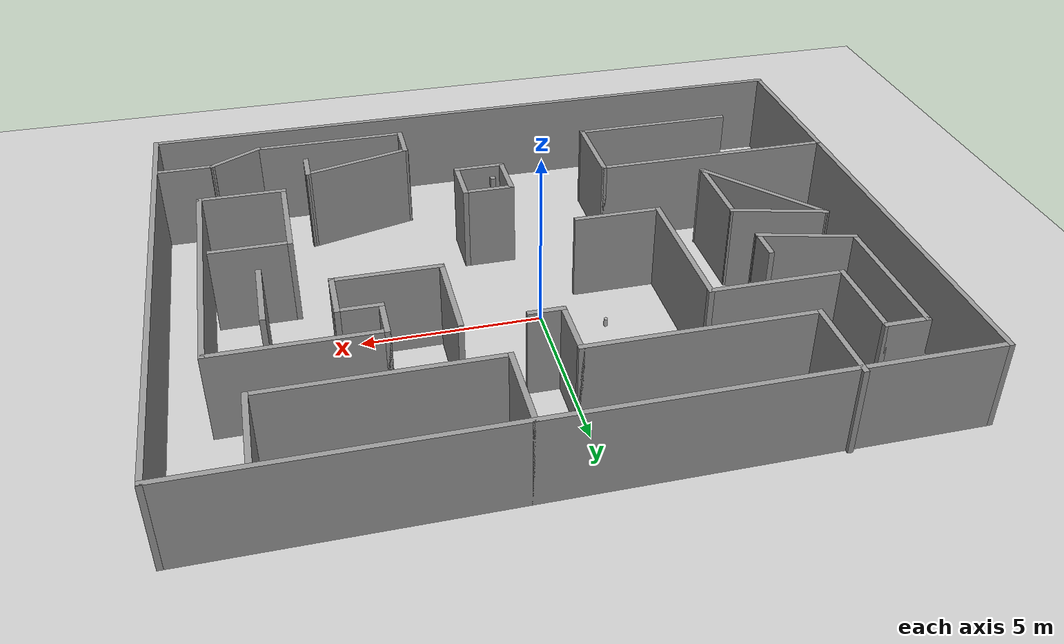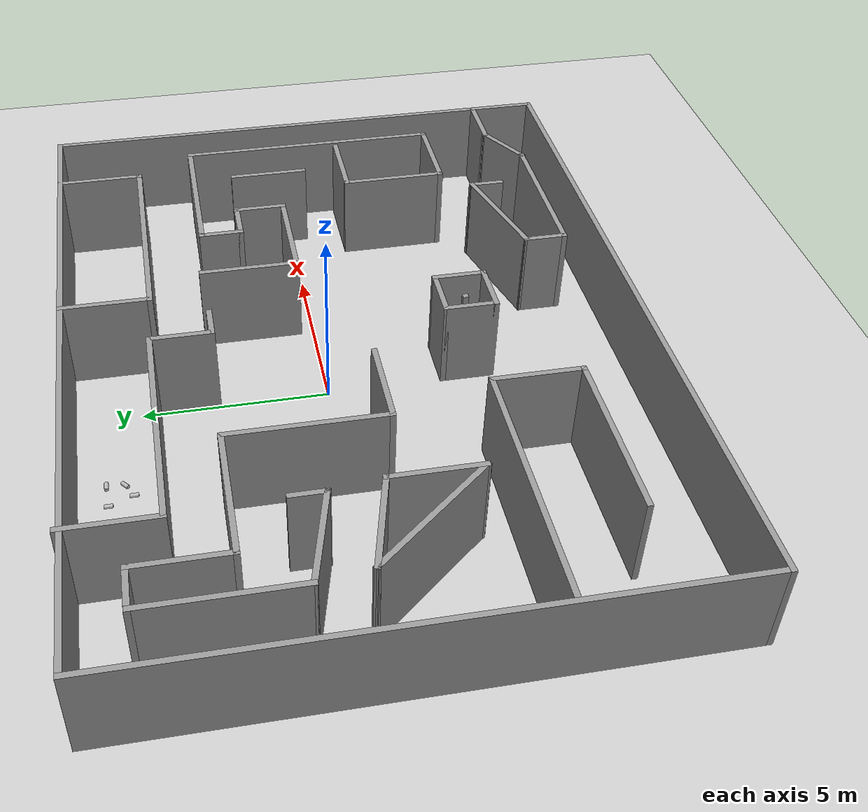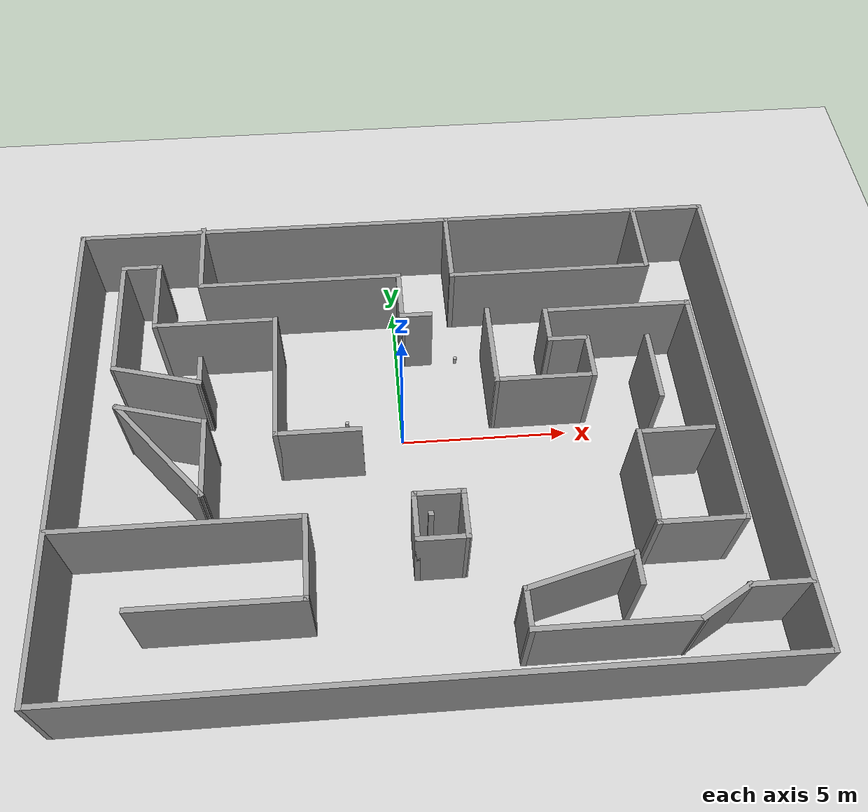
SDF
<sdf version="1.7">
 <world name="default">
  <light name="sun" type="directional">
   <pose>0 0 10 0 -0 0</pose>
   <diffuse>0.8 0.8 0.8 1</diffuse>
   <specular>0.2 0.2 0.2 1</specular>
   <attenuation>
    <range>1000</range>
    <constant>0.9</constant>
    <linear>0.01</linear>
    <quadratic>0.001</quadratic>
   </attenuation>
   <direction>-0.5 0.1 -0.9</direction>
   <spot><inner_angle>0</inner_angle><outer_angle>0</outer_angle><falloff>0</falloff></spot>
  </light>
  <model name="ground_plane">
   <static>1</static>
   <link name="link">
    <collision name="collision">
     <geometry><plane><normal>0 0 1</normal><size>100 100</size></plane></geometry>
     <surface><friction><ode><mu>100</mu><mu2>50</mu2></ode></friction></surface>
    </collision>
    <visual name="visual">
     <cast_shadows>0</cast_shadows>
     <geometry><plane><normal>0 0 1</normal><size>100 100</size></plane></geometry>
     <material>
      <script><uri>file://media/materials/scripts/gazebo.material</uri><name>Gazebo/Grey</name></script>
     </material>
    </visual>
   </link>
  </model>
  <gravity>0 0 -9.8</gravity>
  <magnetic_field>6e-06 2.3e-05 -4.2e-05</magnetic_field>
  <atmosphere type="adiabatic"/>
  <physics type="ode">
   <max_step_size>0.001</max_step_size>
   <real_time_factor>1</real_time_factor>
   <real_time_update_rate>1000</real_time_update_rate>
  </physics>
  <scene><ambient>0.4 0.4 0.4 1</ambient><background>0.7 0.7 0.7 1</background><shadows>1</shadows></scene>
  <audio><device>default</device></audio>
  <spherical_coordinates>
   <surface_model>EARTH_WGS84</surface_model>
   <latitude_deg>0</latitude_deg>
   <longitude_deg>0</longitude_deg>
   <elevation>0</elevation>
   <heading_deg>0</heading_deg>
  </spherical_coordinates>
  <model name="Maze">
   <pose>0.205074 -0.67933 0 0 -0 0</pose>
   <link name="Wall_11">
    <collision name="Wall_11_Collision">
     <geometry><box><size>20 0.15 2.5</size></box></geometry>
     <pose>0 0 1.25 0 -0 0</pose>
    </collision>
    <visual name="Wall_11_Visual">
     <pose>0 0 1.25 0 -0 0</pose>
     <geometry><box><size>20 0.15 2.5</size></box></geometry>
     <material>
      <script><uri>file://media/materials/scripts/gazebo.material</uri><name>Gazebo/Grey</name></script>
      <ambient>1 1 1 1</ambient>
     </material>
     <meta><layer>0</layer></meta>
    </visual>
    <pose>-0 7.49723 0 0 -0 0</pose>
   </link>
   <link name="Wall_12">
    <collision name="Wall_12_Collision">
     <geometry><box><size>15.25 0.15 2.5</size></box></geometry>
     <pose>0 0 1.25 0 -0 0</pose>
    </collision>
    <visual name="Wall_12_Visual">
     <pose>0 0 1.25 0 -0 0</pose>
     <geometry><box><size>15.25 0.15 2.5</size></box></geometry>
     <material>
      <script><uri>file://media/materials/scripts/gazebo.material</uri><name>Gazebo/Grey</name></script>
      <ambient>1 1 1 1</ambient>
     </material>
     <meta><layer>0</layer></meta>
    </visual>
    <pose>9.925 -0.052768 0 0 -0 -1.5708</pose>
   </link>
   <link name="Wall_13">
    <collision name="Wall_13_Collision">
     <geometry><box><size>20 0.15 2.5</size></box></geometry>
     <pose>0 0 1.25 0 -0 0</pose>
    </collision>
    <visual name="Wall_13_Visual">
     <pose>0 0 1.25 0 -0 0</pose>
     <geometry><box><size>20 0.15 2.5</size></box></geometry>
     <material>
      <script><uri>file://media/materials/scripts/gazebo.material</uri><name>Gazebo/Grey</name></script>
      <ambient>1 1 1 1</ambient>
     </material>
     <meta><layer>0</layer></meta>
    </visual>
    <pose>-0 -7.60277 0 0 -0 3.14159</pose>
   </link>
   <link name="Wall_14">
    <collision name="Wall_14_Collision">
     <geometry><box><size>15.25 0.15 2.5</size></box></geometry>
     <pose>0 0 1.25 0 -0 0</pose>
    </collision>
    <visual name="Wall_14_Visual">
     <pose>0 0 1.25 0 -0 0</pose>
     <geometry><box><size>15.25 0.15 2.5</size></box></geometry>
     <material>
      <script><uri>file://media/materials/scripts/gazebo.material</uri><name>Gazebo/Grey</name></script>
      <ambient>1 1 1 1</ambient>
     </material>
     <meta><layer>0</layer></meta>
    </visual>
    <pose>-9.925 -0.052768 0 0 -0 1.5708</pose>
   </link>
   <link name="Wall_16">
    <collision name="Wall_16_Collision">
     <geometry><box><size>2.5 0.15 2.5</size></box></geometry>
     <pose>0 0 1.25 0 -0 0</pose>
    </collision>
    <visual name="Wall_16_Visual">
     <pose>0 0 1.25 0 -0 0</pose>
     <geometry><box><size>2.5 0.15 2.5</size></box></geometry>
     <material>
      <script><uri>file://media/materials/scripts/gazebo.material</uri><name>Gazebo/Grey</name></script>
      <ambient>1 1 1 1</ambient>
     </material>
     <meta><layer>0</layer></meta>
    </visual>
    <pose>-6.12569 6.42777 0 0 -0 -1.5708</pose>
   </link>
   <link name="Wall_17">
    <collision name="Wall_17_Collision">
     <geometry><box><size>6.25 0.15 2.5</size></box></geometry>
     <pose>0 0 1.25 0 -0 0</pose>
    </collision>
    <visual name="Wall_17_Visual">
     <pose>0 0 1.25 0 -0 0</pose>
     <geometry><box><size>6.25 0.15 2.5</size></box></geometry>
     <material>
      <script><uri>file://media/materials/scripts/gazebo.material</uri><name>Gazebo/Grey</name></script>
      <ambient>1 1 1 1</ambient>
     </material>
     <meta><layer>0</layer></meta>
    </visual>
    <pose>-3.07569 5.25277 0 0 -0 0</pose>
   </link>
   <link name="Wall_18">
    <collision name="Wall_18_Collision">
     <geometry><box><size>1.75 0.15 2.5</size></box></geometry>
     <pose>0 0 1.25 0 -0 0</pose>
    </collision>
    <visual name="Wall_18_Visual">
     <pose>0 0 1.25 0 -0 0</pose>
     <geometry><box><size>1.75 0.15 2.5</size></box></geometry>
     <material>
      <script><uri>file://media/materials/scripts/gazebo.material</uri><name>Gazebo/Grey</name></script>
      <ambient>1 1 1 1</ambient>
     </material>
     <meta><layer>0</layer></meta>
    </visual>
    <pose>-0.025694 4.45277 0 0 -0 -1.5708</pose>
   </link>
   <link name="Wall_19">
    <collision name="Wall_19_Collision">
     <geometry><box><size>1 0.15 2.5</size></box></geometry>
     <pose>0 0 1.25 0 -0 0</pose>
    </collision>
    <visual name="Wall_19_Visual">
     <pose>0 0 1.25 0 -0 0</pose>
     <geometry><box><size>1 0.15 2.5</size></box></geometry>
     <material>
      <script><uri>file://media/materials/scripts/gazebo.material</uri><name>Gazebo/Grey</name></script>
      <ambient>1 1 1 1</ambient>
     </material>
     <meta><layer>0</layer></meta>
    </visual>
    <pose>0.399306 3.65277 0 0 -0 0</pose>
   </link>
   <link name="Wall_21">
    <collision name="Wall_21_Collision">
     <geometry><box><size>2.5 0.15 2.5</size></box></geometry>
     <pose>0 0 1.25 0 -0 0</pose>
    </collision>
    <visual name="Wall_21_Visual">
     <pose>0 0 1.25 0 -0 0</pose>
     <geometry><box><size>2.5 0.15 2.5</size></box></geometry>
     <material>
      <script><uri>file://media/materials/scripts/gazebo.material</uri><name>Gazebo/Grey</name></script>
      <ambient>1 1 1 1</ambient>
     </material>
     <meta><layer>0</layer></meta>
    </visual>
    <pose>7.73474 6.32223 0 0 -0 -1.5708</pose>
   </link>
   <link name="Wall_22">
    <collision name="Wall_22_Collision">
     <geometry><box><size>6.25 0.15 2.5</size></box></geometry>
     <pose>0 0 1.25 0 -0 0</pose>
    </collision>
    <visual name="Wall_22_Visual">
     <pose>0 0 1.25 0 -0 0</pose>
     <geometry><box><size>6.25 0.15 2.5</size></box></geometry>
     <material>
      <script><uri>file://media/materials/scripts/gazebo.material</uri><name>Gazebo/Grey</name></script>
      <ambient>1 1 1 1</ambient>
     </material>
     <meta><layer>0</layer></meta>
    </visual>
    <pose>4.68474 5.14723 0 0 -0 3.14159</pose>
   </link>
   <link name="Wall_23">
    <collision name="Wall_23_Collision">
     <geometry><box><size>2.5 0.15 2.5</size></box></geometry>
     <pose>0 0 1.25 0 -0 0</pose>
    </collision>
    <visual name="Wall_23_Visual">
     <pose>0 0 1.25 0 -0 0</pose>
     <geometry><box><size>2.5 0.15 2.5</size></box></geometry>
     <material>
      <script><uri>file://media/materials/scripts/gazebo.material</uri><name>Gazebo/Grey</name></script>
      <ambient>1 1 1 1</ambient>
     </material>
     <meta><layer>0</layer></meta>
    </visual>
    <pose>1.63474 6.32223 0 0 -0 1.5708</pose>
   </link>
   <link name="Wall_26">
    <collision name="Wall_26_Collision">
     <geometry><box><size>2.75 0.15 2.5</size></box></geometry>
     <pose>0 0 1.25 0 -0 0</pose>
    </collision>
    <visual name="Wall_26_Visual">
     <pose>0 0 1.25 0 -0 0</pose>
     <geometry><box><size>2.75 0.15 2.5</size></box></geometry>
     <material>
      <script><uri>file://media/materials/scripts/gazebo.material</uri><name>Gazebo/Grey</name></script>
      <ambient>1 1 1 1</ambient>
     </material>
     <meta><layer>0</layer></meta>
    </visual>
    <pose>2.56346 2.39793 0 0 -0 -1.5708</pose>
   </link>
   <link name="Wall_27">
    <collision name="Wall_27_Collision">
     <geometry><box><size>3 0.15 2.5</size></box></geometry>
     <pose>0 0 1.25 0 -0 0</pose>
    </collision>
    <visual name="Wall_27_Visual">
     <pose>0 0 1.25 0 -0 0</pose>
     <geometry><box><size>3 0.15 2.5</size></box></geometry>
     <material>
      <script><uri>file://media/materials/scripts/gazebo.material</uri><name>Gazebo/Grey</name></script>
      <ambient>1 1 1 1</ambient>
     </material>
     <meta><layer>0</layer></meta>
    </visual>
    <pose>3.98846 1.09793 0 0 -0 0</pose>
   </link>
   <link name="Wall_28">
    <collision name="Wall_28_Collision">
     <geometry><box><size>1.5 0.15 2.5</size></box></geometry>
     <pose>0 0 1.25 0 -0 0</pose>
    </collision>
    <visual name="Wall_28_Visual">
     <pose>0 0 1.25 0 -0 0</pose>
     <geometry><box><size>1.5 0.15 2.5</size></box></geometry>
     <material>
      <script><uri>file://media/materials/scripts/gazebo.material</uri><name>Gazebo/Grey</name></script>
      <ambient>1 1 1 1</ambient>
     </material>
     <meta><layer>0</layer></meta>
    </visual>
    <pose>5.41346 1.77293 0 0 -0 1.5708</pose>
   </link>
   <link name="Wall_29">
    <collision name="Wall_29_Collision">
     <geometry><box><size>1.25 0.15 2.5</size></box></geometry>
     <pose>0 0 1.25 0 -0 0</pose>
    </collision>
    <visual name="Wall_29_Visual">
     <pose>0 0 1.25 0 -0 0</pose>
     <geometry><box><size>1.25 0.15 2.5</size></box></geometry>
     <material>
      <script><uri>file://media/materials/scripts/gazebo.material</uri><name>Gazebo/Grey</name></script>
      <ambient>1 1 1 1</ambient>
     </material>
     <meta><layer>0</layer></meta>
    </visual>
    <pose>4.86346 2.44793 0 0 -0 3.14159</pose>
   </link>
   <link name="Wall_3">
    <collision name="Wall_3_Collision">
     <geometry><box><size>0.15 0.15 2.5</size></box></geometry>
     <pose>0 0 1.25 0 -0 0</pose>
    </collision>
    <visual name="Wall_3_Visual">
     <pose>0 0 1.25 0 -0 0</pose>
     <geometry><box><size>0.15 0.15 2.5</size></box></geometry>
     <material>
      <script><uri>file://media/materials/scripts/gazebo.material</uri><name>Gazebo/Grey</name></script>
      <ambient>1 1 1 1</ambient>
     </material>
     <meta><layer>0</layer></meta>
    </visual>
    <pose>0.304926 -3.11067 0 0 -0 0</pose>
   </link>
   <link name="Wall_30">
    <collision name="Wall_30_Collision">
     <geometry><box><size>1.25 0.15 2.5</size></box></geometry>
     <pose>0 0 1.25 0 -0 0</pose>
    </collision>
    <visual name="Wall_30_Visual">
     <pose>0 0 1.25 0 -0 0</pose>
     <geometry><box><size>1.25 0.15 2.5</size></box></geometry>
     <material>
      <script><uri>file://media/materials/scripts/gazebo.material</uri><name>Gazebo/Grey</name></script>
      <ambient>1 1 1 1</ambient>
     </material>
     <meta><layer>0</layer></meta>
    </visual>
    <pose>4.31346 2.99793 0 0 -0 1.5708</pose>
   </link>
   <link name="Wall_31">
    <collision name="Wall_31_Collision">
     <geometry><box><size>4.5 0.15 2.5</size></box></geometry>
     <pose>0 0 1.25 0 -0 0</pose>
    </collision>
    <visual name="Wall_31_Visual">
     <pose>0 0 1.25 0 -0 0</pose>
     <geometry><box><size>4.5 0.15 2.5</size></box></geometry>
     <material>
      <script><uri>file://media/materials/scripts/gazebo.material</uri><name>Gazebo/Grey</name></script>
      <ambient>1 1 1 1</ambient>
     </material>
     <meta><layer>0</layer></meta>
    </visual>
    <pose>6.48846 3.54793 0 0 -0 0</pose>
   </link>
   <link name="Wall_32">
    <collision name="Wall_32_Collision">
     <geometry><box><size>7.5 0.15 2.5</size></box></geometry>
     <pose>0 0 1.25 0 -0 0</pose>
    </collision>
    <visual name="Wall_32_Visual">
     <pose>0 0 1.25 0 -0 0</pose>
     <geometry><box><size>7.5 0.15 2.5</size></box></geometry>
     <material>
      <script><uri>file://media/materials/scripts/gazebo.material</uri><name>Gazebo/Grey</name></script>
      <ambient>1 1 1 1</ambient>
     </material>
     <meta><layer>0</layer></meta>
    </visual>
    <pose>8.66346 -0.127074 0 0 -0 -1.5708</pose>
   </link>
   <link name="Wall_33">
    <collision name="Wall_33_Collision">
     <geometry><box><size>2.5 0.15 2.5</size></box></geometry>
     <pose>0 0 1.25 0 -0 0</pose>
    </collision>
    <visual name="Wall_33_Visual">
     <pose>0 0 1.25 0 -0 0</pose>
     <geometry><box><size>2.5 0.15 2.5</size></box></geometry>
     <material>
      <script><uri>file://media/materials/scripts/gazebo.material</uri><name>Gazebo/Grey</name></script>
      <ambient>1 1 1 1</ambient>
     </material>
     <meta><layer>0</layer></meta>
    </visual>
    <pose>7.48846 -3.80207 0 0 -0 3.14159</pose>
   </link>
   <link name="Wall_34">
    <collision name="Wall_34_Collision">
     <geometry><box><size>3 0.15 2.5</size></box></geometry>
     <pose>0 0 1.25 0 -0 0</pose>
    </collision>
    <visual name="Wall_34_Visual">
     <pose>0 0 1.25 0 -0 0</pose>
     <geometry><box><size>3 0.15 2.5</size></box></geometry>
     <material>
      <script><uri>file://media/materials/scripts/gazebo.material</uri><name>Gazebo/Grey</name></script>
      <ambient>1 1 1 1</ambient>
     </material>
     <meta><layer>0</layer></meta>
    </visual>
    <pose>6.31346 -2.37707 0 0 -0 1.5708</pose>
   </link>
   <link name="Wall_35">
    <collision name="Wall_35_Collision">
     <geometry><box><size>2.25 0.15 2.5</size></box></geometry>
     <pose>0 0 1.25 0 -0 0</pose>
    </collision>
    <visual name="Wall_35_Visual">
     <pose>0 0 1.25 0 -0 0</pose>
     <geometry><box><size>2.25 0.15 2.5</size></box></geometry>
     <material>
      <script><uri>file://media/materials/scripts/gazebo.material</uri><name>Gazebo/Grey</name></script>
      <ambient>1 1 1 1</ambient>
     </material>
     <meta><layer>0</layer></meta>
    </visual>
    <pose>7.36346 -0.952074 0 0 -0 0</pose>
   </link>
   <link name="Wall_37">
    <collision name="Wall_37_Collision">
     <geometry><box><size>2.25 0.15 2.5</size></box></geometry>
     <pose>0 0 1.25 0 -0 0</pose>
    </collision>
    <visual name="Wall_37_Visual">
     <pose>0 0 1.25 0 -0 0</pose>
     <geometry><box><size>2.25 0.15 2.5</size></box></geometry>
     <material>
      <script><uri>file://media/materials/scripts/gazebo.material</uri><name>Gazebo/Grey</name></script>
      <ambient>1 1 1 1</ambient>
     </material>
     <meta><layer>0</layer></meta>
    </visual>
    <pose>7.20706 1.30041 0 0 -0 1.5708</pose>
   </link>
   <link name="Wall_39">
    <collision name="Wall_39_Collision">
     <geometry><box><size>7 0.15 2.5</size></box></geometry>
     <pose>0 0 1.25 0 -0 0</pose>
    </collision>
    <visual name="Wall_39_Visual">
     <pose>0 0 1.25 0 -0 0</pose>
     <geometry><box><size>7 0.15 2.5</size></box></geometry>
     <material>
      <script><uri>file://media/materials/scripts/gazebo.material</uri><name>Gazebo/Grey</name></script>
      <ambient>1 1 1 1</ambient>
     </material>
     <meta><layer>0</layer></meta>
    </visual>
    <pose>-6.46482 -2.95086 0 0 -0 0</pose>
   </link>
   <link name="Wall_40">
    <collision name="Wall_40_Collision">
     <geometry><box><size>2.5 0.15 2.5</size></box></geometry>
     <pose>0 0 1.25 0 -0 0</pose>
    </collision>
    <visual name="Wall_40_Visual">
     <pose>0 0 1.25 0 -0 0</pose>
     <geometry><box><size>2.5 0.15 2.5</size></box></geometry>
     <material>
      <script><uri>file://media/materials/scripts/gazebo.material</uri><name>Gazebo/Grey</name></script>
      <ambient>1 1 1 1</ambient>
     </material>
     <meta><layer>0</layer></meta>
    </visual>
    <pose>-3.03982 -4.12586 0 0 -0 -1.5708</pose>
   </link>
   <link name="Wall_41">
    <collision name="Wall_41_Collision">
     <geometry><box><size>4.75 0.15 2.5</size></box></geometry>
     <pose>0 0 1.25 0 -0 0</pose>
    </collision>
    <visual name="Wall_41_Visual">
     <pose>0 0 1.25 0 -0 0</pose>
     <geometry><box><size>4.75 0.15 2.5</size></box></geometry>
     <material>
      <script><uri>file://media/materials/scripts/gazebo.material</uri><name>Gazebo/Grey</name></script>
      <ambient>1 1 1 1</ambient>
     </material>
     <meta><layer>0</layer></meta>
    </visual>
    <pose>-5.33982 -5.30086 0 0 -0 3.14159</pose>
   </link>
   <link name="Wall_43">
    <collision name="Wall_43_Collision">
     <geometry><box><size>1.5 0.15 2.5</size></box></geometry>
     <pose>0 0 1.25 0 -0 0</pose>
    </collision>
    <visual name="Wall_43_Visual">
     <pose>0 0 1.25 0 -0 0</pose>
     <geometry><box><size>1.5 0.15 2.5</size></box></geometry>
     <material>
      <script><uri>file://media/materials/scripts/gazebo.material</uri><name>Gazebo/Grey</name></script>
      <ambient>1 1 1 1</ambient>
     </material>
     <meta><layer>0</layer></meta>
    </visual>
    <pose>-0.110125 -3.16854 0 0 -0 -1.5708</pose>
   </link>
   <link name="Wall_44">
    <collision name="Wall_44_Collision">
     <geometry><box><size>1.5 0.15 2.5</size></box></geometry>
     <pose>0 0 1.25 0 -0 0</pose>
    </collision>
    <visual name="Wall_44_Visual">
     <pose>0 0 1.25 0 -0 0</pose>
     <geometry><box><size>1.5 0.15 2.5</size></box></geometry>
     <material>
      <script><uri>file://media/materials/scripts/gazebo.material</uri><name>Gazebo/Grey</name></script>
      <ambient>1 1 1 1</ambient>
     </material>
     <meta><layer>0</layer></meta>
    </visual>
    <pose>0.564875 -3.84354 0 0 -0 0</pose>
   </link>
   <link name="Wall_45">
    <collision name="Wall_45_Collision">
     <geometry><box><size>1.5 0.15 2.5</size></box></geometry>
     <pose>0 0 1.25 0 -0 0</pose>
    </collision>
    <visual name="Wall_45_Visual">
     <pose>0 0 1.25 0 -0 0</pose>
     <geometry><box><size>1.5 0.15 2.5</size></box></geometry>
     <material>
      <script><uri>file://media/materials/scripts/gazebo.material</uri><name>Gazebo/Grey</name></script>
      <ambient>1 1 1 1</ambient>
     </material>
     <meta><layer>0</layer></meta>
    </visual>
    <pose>1.23988 -3.16854 0 0 -0 1.5708</pose>
   </link>
   <link name="Wall_46">
    <collision name="Wall_46_Collision">
     <geometry><box><size>1.5 0.15 2.5</size></box></geometry>
     <pose>0 0 1.25 0 -0 0</pose>
    </collision>
    <visual name="Wall_46_Visual">
     <pose>0 0 1.25 0 -0 0</pose>
     <geometry><box><size>1.5 0.15 2.5</size></box></geometry>
     <material>
      <script><uri>file://media/materials/scripts/gazebo.material</uri><name>Gazebo/Grey</name></script>
      <ambient>1 1 1 1</ambient>
     </material>
     <meta><layer>0</layer></meta>
    </visual>
    <pose>0.564875 -2.49354 0 0 -0 3.14159</pose>
   </link>
   <link name="Wall_50">
    <collision name="Wall_50_Collision">
     <geometry><box><size>1.75 0.15 2.5</size></box></geometry>
     <pose>0 0 1.25 0 -0 0</pose>
    </collision>
    <visual name="Wall_50_Visual">
     <pose>0 0 1.25 0 -0 0</pose>
     <geometry><box><size>1.75 0.15 2.5</size></box></geometry>
     <material>
      <script><uri>file://media/materials/scripts/gazebo.material</uri><name>Gazebo/Grey</name></script>
      <ambient>1 1 1 1</ambient>
     </material>
     <meta><layer>0</layer></meta>
    </visual>
    <pose>9.08064 -5.72998 0 0 -0 3.14159</pose>
   </link>
   <link name="Wall_52">
    <collision name="Wall_52_Collision">
     <geometry><box><size>1.75 0.15 2.5</size></box></geometry>
     <pose>0 0 1.25 0 -0 0</pose>
    </collision>
    <visual name="Wall_52_Visual">
     <pose>0 0 1.25 0 -0 0</pose>
     <geometry><box><size>1.75 0.15 2.5</size></box></geometry>
     <material>
      <script><uri>file://media/materials/scripts/gazebo.material</uri><name>Gazebo/Grey</name></script>
      <ambient>1 1 1 1</ambient>
     </material>
     <meta><layer>0</layer></meta>
    </visual>
    <pose>7.58782 -6.12998 0 0 -0 -2.61799</pose>
   </link>
   <link name="Wall_53">
    <collision name="Wall_53_Collision">
     <geometry><box><size>4.5 0.15 2.5</size></box></geometry>
     <pose>0 0 1.25 0 -0 0</pose>
    </collision>
    <visual name="Wall_53_Visual">
     <pose>0 0 1.25 0 -0 0</pose>
     <geometry><box><size>4.5 0.15 2.5</size></box></geometry>
     <material>
      <script><uri>file://media/materials/scripts/gazebo.material</uri><name>Gazebo/Grey</name></script>
      <ambient>1 1 1 1</ambient>
     </material>
     <meta><layer>0</layer></meta>
    </visual>
    <pose>4.72 -6.52998 0 0 -0 3.14159</pose>
   </link>
   <link name="Wall_54">
    <collision name="Wall_54_Collision">
     <geometry><box><size>1.25 0.15 2.5</size></box></geometry>
     <pose>0 0 1.25 0 -0 0</pose>
    </collision>
    <visual name="Wall_54_Visual">
     <pose>0 0 1.25 0 -0 0</pose>
     <geometry><box><size>1.25 0.15 2.5</size></box></geometry>
     <material>
      <script><uri>file://media/materials/scripts/gazebo.material</uri><name>Gazebo/Grey</name></script>
      <ambient>1 1 1 1</ambient>
     </material>
     <meta><layer>0</layer></meta>
    </visual>
    <pose>2.545 -5.97998 0 0 -0 1.5708</pose>
   </link>
   <link name="Wall_55">
    <collision name="Wall_55_Collision">
     <geometry><box><size>3.25 0.15 2.5</size></box></geometry>
     <pose>0 0 1.25 0 -0 0</pose>
    </collision>
    <visual name="Wall_55_Visual">
     <pose>0 0 1.25 0 -0 0</pose>
     <geometry><box><size>3.25 0.15 2.5</size></box></geometry>
     <material>
      <script><uri>file://media/materials/scripts/gazebo.material</uri><name>Gazebo/Grey</name></script>
      <ambient>1 1 1 1</ambient>
     </material>
     <meta><layer>0</layer></meta>
    </visual>
    <pose>4.04219 -5.02881 0 0 -0 0.261799</pose>
   </link>
   <link name="Wall_56">
    <collision name="Wall_56_Collision">
     <geometry><box><size>1 0.15 2.5</size></box></geometry>
     <pose>0 0 1.25 0 -0 0</pose>
    </collision>
    <visual name="Wall_56_Visual">
     <pose>0 0 1.25 0 -0 0</pose>
     <geometry><box><size>1 0.15 2.5</size></box></geometry>
     <material>
      <script><uri>file://media/materials/scripts/gazebo.material</uri><name>Gazebo/Grey</name></script>
      <ambient>1 1 1 1</ambient>
     </material>
     <meta><layer>0</layer></meta>
    </visual>
    <pose>5.53937 -5.05264 0 0 -0 -1.5708</pose>
   </link>
   <link name="Wall_58">
    <collision name="Wall_58_Collision">
     <geometry><box><size>2.5 0.15 2.5</size></box></geometry>
     <pose>0 0 1.25 0 -0 0</pose>
    </collision>
    <visual name="Wall_58_Visual">
     <pose>0 0 1.25 0 -0 0</pose>
     <geometry><box><size>2.5 0.15 2.5</size></box></geometry>
     <material>
      <script><uri>file://media/materials/scripts/gazebo.material</uri><name>Gazebo/Grey</name></script>
      <ambient>1 1 1 1</ambient>
     </material>
     <meta><layer>0</layer></meta>
    </visual>
    <pose>-2.6571 -0.312453 0 0 -0 3.14159</pose>
   </link>
   <link name="Wall_59">
    <collision name="Wall_59_Collision">
     <geometry><box><size>4.25 0.15 2.5</size></box></geometry>
     <pose>0 0 1.25 0 -0 0</pose>
    </collision>
    <visual name="Wall_59_Visual">
     <pose>0 0 1.25 0 -0 0</pose>
     <geometry><box><size>4.25 0.15 2.5</size></box></geometry>
     <material>
      <script><uri>file://media/materials/scripts/gazebo.material</uri><name>Gazebo/Grey</name></script>
      <ambient>1 1 1 1</ambient>
     </material>
     <meta><layer>0</layer></meta>
    </visual>
    <pose>-3.8321 1.73755 0 0 -0 1.5708</pose>
   </link>
   <link name="Wall_60">
    <collision name="Wall_60_Collision">
     <geometry><box><size>3.75 0.15 2.5</size></box></geometry>
     <pose>0 0 1.25 0 -0 0</pose>
    </collision>
    <visual name="Wall_60_Visual">
     <pose>0 0 1.25 0 -0 0</pose>
     <geometry><box><size>3.75 0.15 2.5</size></box></geometry>
     <material>
      <script><uri>file://media/materials/scripts/gazebo.material</uri><name>Gazebo/Grey</name></script>
      <ambient>1 1 1 1</ambient>
     </material>
     <meta><layer>0</layer></meta>
    </visual>
    <pose>-5.6321 3.78755 0 0 -0 3.14159</pose>
   </link>
   <link name="Wall_61">
    <collision name="Wall_61_Collision">
     <geometry><box><size>2.5 0.15 2.5</size></box></geometry>
     <pose>0 0 1.25 0 -0 0</pose>
    </collision>
    <visual name="Wall_61_Visual">
     <pose>0 0 1.25 0 -0 0</pose>
     <geometry><box><size>2.5 0.15 2.5</size></box></geometry>
     <material>
      <script><uri>file://media/materials/scripts/gazebo.material</uri><name>Gazebo/Grey</name></script>
      <ambient>1 1 1 1</ambient>
     </material>
     <meta><layer>0</layer></meta>
    </visual>
    <pose>-7.4321 4.96255 0 0 -0 1.5708</pose>
   </link>
   <link name="Wall_62">
    <collision name="Wall_62_Collision">
     <geometry><box><size>1.25 0.15 2.5</size></box></geometry>
     <pose>0 0 1.25 0 -0 0</pose>
    </collision>
    <visual name="Wall_62_Visual">
     <pose>0 0 1.25 0 -0 0</pose>
     <geometry><box><size>1.25 0.15 2.5</size></box></geometry>
     <material>
      <script><uri>file://media/materials/scripts/gazebo.material</uri><name>Gazebo/Grey</name></script>
      <ambient>1 1 1 1</ambient>
     </material>
     <meta><layer>0</layer></meta>
    </visual>
    <pose>-7.9821 6.13755 0 0 -0 3.14159</pose>
   </link>
   <link name="Wall_63">
    <collision name="Wall_63_Collision">
     <geometry><box><size>4 0.15 2.5</size></box></geometry>
     <pose>0 0 1.25 0 -0 0</pose>
    </collision>
    <visual name="Wall_63_Visual">
     <pose>0 0 1.25 0 -0 0</pose>
     <geometry><box><size>4 0.15 2.5</size></box></geometry>
     <material>
      <script><uri>file://media/materials/scripts/gazebo.material</uri><name>Gazebo/Grey</name></script>
      <ambient>1 1 1 1</ambient>
     </material>
     <meta><layer>0</layer></meta>
    </visual>
    <pose>-8.5321 4.21255 0 0 -0 -1.5708</pose>
   </link>
   <link name="Wall_64">
    <collision name="Wall_64_Collision">
     <geometry><box><size>2.75 0.15 2.5</size></box></geometry>
     <pose>0 0 1.25 0 -0 0</pose>
    </collision>
    <visual name="Wall_64_Visual">
     <pose>0 0 1.25 0 -0 0</pose>
     <geometry><box><size>2.75 0.15 2.5</size></box></geometry>
     <material>
      <script><uri>file://media/materials/scripts/gazebo.material</uri><name>Gazebo/Grey</name></script>
      <ambient>1 1 1 1</ambient>
     </material>
     <meta><layer>0</layer></meta>
    </visual>
    <pose>-7.27639 1.95108 0 0 -0 -0.261799</pose>
   </link>
   <link name="Wall_65">
    <collision name="Wall_65_Collision">
     <geometry><box><size>1 0.15 2.5</size></box></geometry>
     <pose>0 0 1.25 0 -0 0</pose>
    </collision>
    <visual name="Wall_65_Visual">
     <pose>0 0 1.25 0 -0 0</pose>
     <geometry><box><size>1 0.15 2.5</size></box></geometry>
     <material>
      <script><uri>file://media/materials/scripts/gazebo.material</uri><name>Gazebo/Grey</name></script>
      <ambient>1 1 1 1</ambient>
     </material>
     <meta><layer>0</layer></meta>
    </visual>
    <pose>-6.02069 2.03962 0 0 -0 1.5708</pose>
   </link>
   <link name="Wall_67">
    <collision name="Wall_67_Collision">
     <geometry><box><size>2.75 0.15 2.5</size></box></geometry>
     <pose>0 0 1.25 0 -0 0</pose>
    </collision>
    <visual name="Wall_67_Visual">
     <pose>0 0 1.25 0 -0 0</pose>
     <geometry><box><size>2.75 0.15 2.5</size></box></geometry>
     <material>
      <script><uri>file://media/materials/scripts/gazebo.material</uri><name>Gazebo/Grey</name></script>
      <ambient>1 1 1 1</ambient>
     </material>
     <meta><layer>0</layer></meta>
    </visual>
    <pose>-7.08625 0.582339 0 0 -0 -0.261799</pose>
   </link>
   <link name="Wall_68">
    <collision name="Wall_68_Collision">
     <geometry><box><size>2.5 0.15 2.5</size></box></geometry>
     <pose>0 0 1.25 0 -0 0</pose>
    </collision>
    <visual name="Wall_68_Visual">
     <pose>0 0 1.25 0 -0 0</pose>
     <geometry><box><size>2.5 0.15 2.5</size></box></geometry>
     <material>
      <script><uri>file://media/materials/scripts/gazebo.material</uri><name>Gazebo/Grey</name></script>
      <ambient>1 1 1 1</ambient>
     </material>
     <meta><layer>0</layer></meta>
    </visual>
    <pose>-5.83055 -0.929126 0 0 -0 -1.5708</pose>
   </link>
   <link name="Wall_69">
    <collision name="Wall_69_Collision">
     <geometry><box><size>4.08005 0.15 2.5</size></box></geometry>
     <pose>0 0 1.25 0 -0 0</pose>
    </collision>
    <visual name="Wall_69_Visual">
     <pose>0 0 1.25 0 -0 0</pose>
     <geometry><box><size>4.08005 0.15 2.5</size></box></geometry>
     <material>
      <script><uri>file://media/materials/scripts/gazebo.material</uri><name>Gazebo/Grey</name></script>
      <ambient>1 1 1 1</ambient>
     </material>
     <meta><layer>0</layer></meta>
    </visual>
    <pose>-7.08625 -0.592661 0 0 -0 2.26403</pose>
   </link>
   <static>1</static>
  </model>
  <model name="beer">
   <link name="link">
    <pose>0 0 0.115 0 -0 0</pose>
    <inertial>
     <mass>0.39</mass>
     <inertia><ixx>0.00058</ixx><ixy>0</ixy><ixz>0</ixz><iyy>0.00058</iyy><iyz>0</iyz><izz>0.00019</izz></inertia>
    </inertial>
    <collision name="collision">
     <geometry><cylinder><radius>0.055</radius><length>0.23</length></cylinder></geometry>
    </collision>
    <visual name="visual">
     <geometry><cylinder><radius>0.055</radius><length>0.23</length></cylinder></geometry>
     <material>
      <script>
       <uri>model://beer/materials/scripts</uri>
       <uri>model://beer/materials/textures</uri>
       <name>Beer/Diffuse</name>
      </script>
     </material>
    </visual>
   </link>
   <pose>1.86834 2.94582 -7e-06 -1e-06 -0 -3.9e-05</pose>
  </model>
  <model name="beer_0">
   <link name="link">
    <pose>0 0 0.115 0 -0 0</pose>
    <inertial>
     <mass>0.39</mass>
     <inertia><ixx>0.00058</ixx><ixy>0</ixy><ixz>0</ixz><iyy>0.00058</iyy><iyz>0</iyz><izz>0.00019</izz></inertia>
    </inertial>
    <collision name="collision">
     <geometry><cylinder><radius>0.055</radius><length>0.23</length></cylinder></geometry>
    </collision>
    <visual name="visual">
     <geometry><cylinder><radius>0.055</radius><length>0.23</length></cylinder></geometry>
     <material>
      <script>
       <uri>model://beer/materials/scripts</uri>
       <uri>model://beer/materials/textures</uri>
       <name>Beer/Diffuse</name>
      </script>
     </material>
    </visual>
   </link>
   <pose>-1.67624 0.706823 -7e-06 -1e-06 -0 -3.5e-05</pose>
  </model>
  <model name="beer_1">
   <link name="link">
    <pose>0 0 0.115 0 -0 0</pose>
    <inertial>
     <mass>0.39</mass>
     <inertia><ixx>0.00058</ixx><ixy>0</ixy><ixz>0</ixz><iyy>0.00058</iyy><iyz>0</iyz><izz>0.00019</izz></inertia>
    </inertial>
    <collision name="collision">
     <geometry><cylinder><radius>0.055</radius><length>0.23</length></cylinder></geometry>
    </collision>
    <visual name="visual">
     <geometry><cylinder><radius>0.055</radius><length>0.23</length></cylinder></geometry>
     <material>
      <script>
       <uri>model://beer/materials/scripts</uri>
       <uri>model://beer/materials/textures</uri>
       <name>Beer/Diffuse</name>
      </script>
     </material>
    </visual>
   </link>
   <pose>-3.12918 6.09849 0.054918 -1.56991 -1.15746 3.14145</pose>
  </model>
  <model name="beer_2">
   <link name="link">
    <pose>0 0 0.115 0 -0 0</pose>
    <inertial>
     <mass>0.39</mass>
     <inertia><ixx>0.00058</ixx><ixy>0</ixy><ixz>0</ixz><iyy>0.00058</iyy><iyz>0</iyz><izz>0.00019</izz></inertia>
    </inertial>
    <collision name="collision">
     <geometry><cylinder><radius>0.055</radius><length>0.23</length></cylinder></geometry>
    </collision>
    <visual name="visual">
     <geometry><cylinder><radius>0.055</radius><length>0.23</length></cylinder></geometry>
     <material>
      <script>
       <uri>model://beer/materials/scripts</uri>
       <uri>model://beer/materials/textures</uri>
       <name>Beer/Diffuse</name>
      </script>
     </material>
    </visual>
   </link>
   <pose>-2.56263 5.48043 0.055 1.5708 0.239458 2.26648</pose>
  </model>
  <model name="beer_3">
   <link name="link">
    <pose>0 0 0.115 0 -0 0</pose>
    <inertial>
     <mass>0.39</mass>
     <inertia><ixx>0.00058</ixx><ixy>0</ixy><ixz>0</ixz><iyy>0.00058</iyy><iyz>0</iyz><izz>0.00019</izz></inertia>
    </inertial>
    <collision name="collision">
     <geometry><cylinder><radius>0.055</radius><length>0.23</length></cylinder></geometry>
    </collision>
    <visual name="visual">
     <geometry><cylinder><radius>0.055</radius><length>0.23</length></cylinder></geometry>
     <material>
      <script>
       <uri>model://beer/materials/scripts</uri>
       <uri>model://beer/materials/textures</uri>
       <name>Beer/Diffuse</name>
      </script>
     </material>
    </visual>
   </link>
   <pose>-2.56479 6.01895 0.055 -1.57153 1.06766 -1.57171</pose>
  </model>
  <model name="beer_4">
   <link name="link">
    <pose>0 0 0.115 0 -0 0</pose>
    <inertial>
     <mass>0.39</mass>
     <inertia><ixx>0.00058</ixx><ixy>0</ixy><ixz>0</ixz><iyy>0.00058</iyy><iyz>0</iyz><izz>0.00019</izz></inertia>
    </inertial>
    <collision name="collision">
     <geometry><cylinder><radius>0.055</radius><length>0.23</length></cylinder></geometry>
    </collision>
    <visual name="visual">
     <geometry><cylinder><radius>0.055</radius><length>0.23</length></cylinder></geometry>
     <material>
      <script>
       <uri>model://beer/materials/scripts</uri>
       <uri>model://beer/materials/textures</uri>
       <name>Beer/Diffuse</name>
      </script>
     </material>
    </visual>
   </link>
   <pose>-2.86351 5.22588 0.054918 -1.57044 -9e-06 0</pose>
  </model>
 </world>
</sdf>
